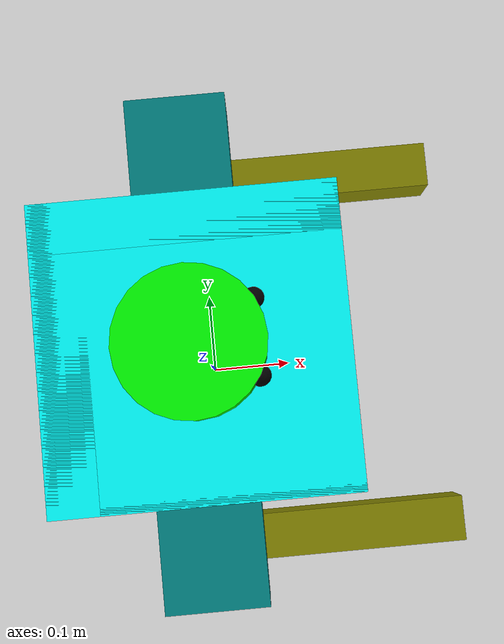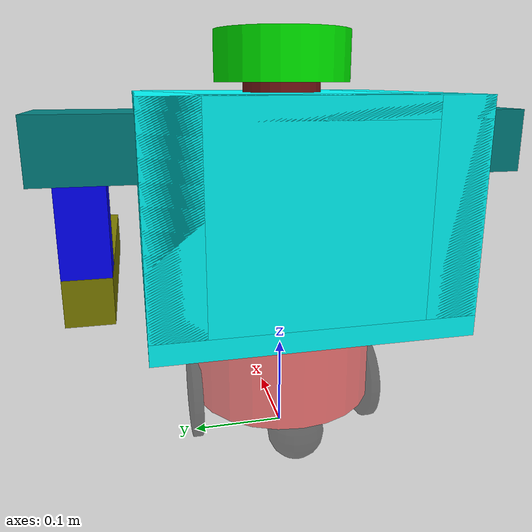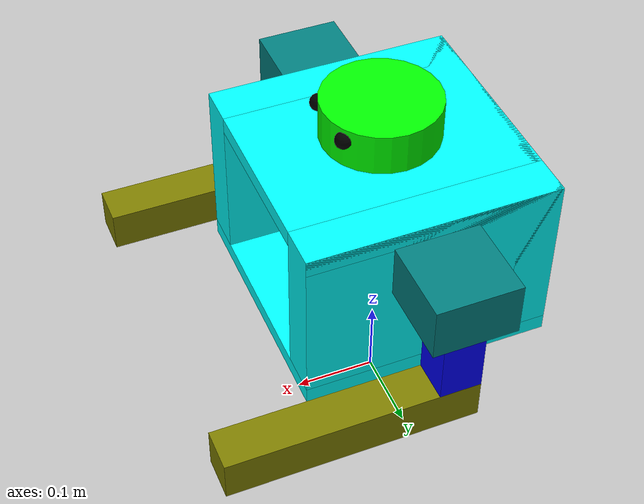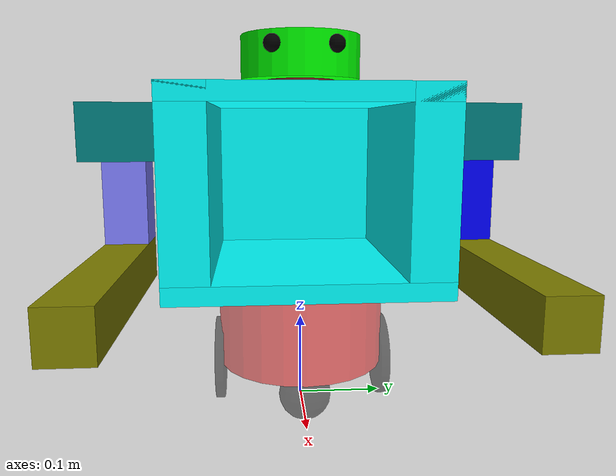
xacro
<?xml version="1.0"?>
<!--
    完整机器人模型 - Gazebo仿真版本
    包含底盘、轮子、身体、腿部、头部等部件
    参数集中定义，便于维护和修改
-->
<robot name="mycar" xmlns:xacro="http://www.ros.org/wiki/xacro">

    <!--                          参数定义区 (集中管理)                            -->

    <!-- 底盘参数 (base_link) -->
    <xacro:property name="base_radius" value="0.1" />        <!-- 底盘半径: 10cm -->
    <xacro:property name="base_height" value="0.1" />       <!-- 底盘高度: 10cm -->
    <xacro:property name="base_z_offset" value="0.1" />     <!-- 底盘离地高度 -->
    <xacro:property name="base_mass" value="2.0" />         <!-- 底盘质量: 2kg -->

    <!-- 驱动轮参数 -->
    <xacro:property name="wheel_radius" value="0.05" />     <!-- 轮子半径: 5cm -->
    <xacro:property name="wheel_length" value="0.01" />     <!-- 轮子宽度: 1cm -->
    <xacro:property name="wheel_y_offset" value="0.1" />    <!-- 轮子Y方向偏移 -->
    <xacro:property name="wheel_z_offset" value="-0.05" />  <!-- 轮子Z方向偏移 -->
    <xacro:property name="wheel_mass" value="0.2" />        <!-- 轮子质量: 0.2kg -->
    <xacro:property name="wheel_separation" value="0.2" />  <!-- 左右轮距 -->

    <!-- 万向轮参数 -->
    <xacro:property name="caster_radius" value="0.03" />    <!-- 万向轮半径: 3cm -->
    <xacro:property name="caster_mass" value="0.05" />      <!-- 万向轮质量: 0.05kg -->
    <xacro:property name="caster_front_x" value="0.07" />   <!-- 前万向轮X偏移 -->
    <xacro:property name="caster_back_x" value="-0.07" />   <!-- 后万向轮X偏移 -->
    <xacro:property name="caster_z_offset" value="-0.07" /> <!-- 万向轮Z偏移 -->

    <!-- 身体平台参数 (box1-box5) -->
    <!-- 底层平台 box1 -->
    <xacro:property name="box1_x" value="0.3" />
    <xacro:property name="box1_y" value="0.3" />
    <xacro:property name="box1_z" value="0.02" />
    <xacro:property name="box1_mass" value="0.5" />
    <xacro:property name="box1_z_offset" value="0.07" />

    <!-- 后面板 box2 -->
    <xacro:property name="box2_x" value="0.05" />
    <xacro:property name="box2_y" value="0.3" />
    <xacro:property name="box2_z" value="0.2" />
    <xacro:property name="box2_mass" value="0.3" />
    <xacro:property name="box2_x_offset" value="-0.125" />
    <xacro:property name="box2_z_offset" value="0.18" />

    <!-- 左侧板 box3 -->
    <xacro:property name="box3_x" value="0.3" />
    <xacro:property name="box3_y" value="0.05" />
    <xacro:property name="box3_z" value="0.2" />
    <xacro:property name="box3_mass" value="0.3" />
    <xacro:property name="box3_y_offset" value="0.125" />
    <xacro:property name="box3_z_offset" value="0.18" />

    <!-- 右侧板 box4 -->
    <xacro:property name="box4_x" value="0.3" />
    <xacro:property name="box4_y" value="0.05" />
    <xacro:property name="box4_z" value="0.2" />
    <xacro:property name="box4_mass" value="0.3" />
    <xacro:property name="box4_y_offset" value="-0.125" />
    <xacro:property name="box4_z_offset" value="0.18" />

    <!-- 顶层平台 box5 -->
    <xacro:property name="box5_x" value="0.3" />
    <xacro:property name="box5_y" value="0.3" />
    <xacro:property name="box5_z" value="0.02" />
    <xacro:property name="box5_mass" value="0.5" />
    <xacro:property name="box5_z_offset" value="0.27" />

    <!-- 腿部参数 -->
    <!-- 左右腿上段 -->
    <xacro:property name="leg_x" value="0.05" />
    <xacro:property name="leg_y" value="0.05" />
    <xacro:property name="leg_z" value="0.16" />
    <xacro:property name="leg_mass" value="0.2" />
    <xacro:property name="leg_y_offset" value="0.08" />

    <!-- 左右腿下段 (leg1) -->
    <xacro:property name="leg1_x" value="0.3" />
    <xacro:property name="leg1_y" value="0.05" />
    <xacro:property name="leg1_z" value="0.05" />
    <xacro:property name="leg1_mass" value="0.3" />
    <xacro:property name="leg1_x_offset" value="0.125" />
    <xacro:property name="leg1_z_offset" value="-0.105" />

    <!-- 头部参数 -->
    <!-- 脖子 -->
    <xacro:property name="neck_radius" value="0.04" />
    <xacro:property name="neck_height" value="0.01" />
    <xacro:property name="neck_mass" value="0.1" />
    <xacro:property name="neck_z_offset" value="0.015" />

    <!-- 头部 -->
    <xacro:property name="head_radius" value="0.07" />
    <xacro:property name="head_height" value="0.05" />
    <xacro:property name="head_mass" value="0.3" />
    <xacro:property name="head_z_offset" value="0.03" />

    <!-- 眼睛 -->
    <xacro:property name="eye_radius" value="0.01" />
    <xacro:property name="eye_mass" value="0.01" />
    <xacro:property name="eye1_y_offset" value="0.035" />
    <xacro:property name="eye2_y_offset" value="-0.035" />
    <xacro:property name="eye_x_offset" value="0.06" />
    <xacro:property name="eye_z_offset" value="0.01" />

    <!-- 关节部件参数 -->
    <xacro:property name="joint_x" value="0.1" />
    <xacro:property name="joint_y" value="0.14" />
    <xacro:property name="joint_z" value="0.065" />
    <xacro:property name="joint_mass" value="0.2" />
    <xacro:property name="joint_y_offset" value="0.055" />
    <xacro:property name="joint_z_offset" value="0.05" />

    <!-- body_link 参数 -->
    <xacro:property name="body_radius" value="0.025" />
    <xacro:property name="body_height" value="0.01" />
    <xacro:property name="body_mass" value="0.1" />
    <xacro:property name="body_z_offset" value="0.055" />

    <!--                            宏定义区                                      -->

    <!-- 惯性矩阵计算宏 -->

    <!-- 圆柱体惯性宏 -->
    <xacro:macro name="cylinder_inertial" params="mass radius length">
        <inertial>
            <mass value="${mass}" />
            <origin xyz="0 0 0" rpy="0 0 0" />
            <inertia ixx="${mass * (3*radius*radius + length*length) / 12}"
                     ixy="0" ixz="0"
                     iyy="${mass * (3*radius*radius + length*length) / 12}"
                     iyz="0"
                     izz="${mass * radius*radius / 2}" />
        </inertial>
    </xacro:macro>

    <!-- 长方体惯性宏 -->
    <xacro:macro name="box_inertial" params="mass x y z">
        <inertial>
            <mass value="${mass}" />
            <origin xyz="0 0 0" rpy="0 0 0" />
            <inertia ixx="${mass * (y*y + z*z) / 12}"
                     ixy="0" ixz="0"
                     iyy="${mass * (x*x + z*z) / 12}"
                     iyz="0"
                     izz="${mass * (x*x + y*y) / 12}" />
        </inertial>
    </xacro:macro>

    <!-- 球体惯性宏 -->
    <xacro:macro name="sphere_inertial" params="mass radius">
        <inertial>
            <mass value="${mass}" />
            <origin xyz="0 0 0" rpy="0 0 0" />
            <inertia ixx="${2 * mass * radius * radius / 5}"
                     ixy="0" ixz="0"
                     iyy="${2 * mass * radius * radius / 5}"
                     iyz="0"
                     izz="${2 * mass * radius * radius / 5}" />
        </inertial>
    </xacro:macro>

    <!-- 材质定义宏 -->
    <xacro:macro name="baselink_material">
        <material name="baselink_color">
            <color rgba="1 0 0 0.5" />
        </material>
    </xacro:macro>

    <xacro:macro name="wheel_material">
        <material name="wheel_color">
            <color rgba="0.0 0.0 0.0 0.5" />
        </material>
    </xacro:macro>

    <!-- 驱动轮宏定义 -->
    <xacro:macro name="drive_wheel" params="name y_offset">
        <link name="${name}">
            <visual>
                <geometry>
                    <cylinder radius="${wheel_radius}" length="${wheel_length}" />
                </geometry>
                <origin xyz="0 0 0" rpy="1.5708 0 0" />
                <xacro:wheel_material />
            </visual>
            <collision>
                <geometry>
                    <cylinder radius="${wheel_radius}" length="${wheel_length}" />
                </geometry>
                <origin xyz="0 0 0" rpy="1.5708 0 0" />
            </collision>
            <xacro:cylinder_inertial mass="${wheel_mass}" radius="${wheel_radius}" length="${wheel_length}" />
        </link>

        <joint name="${name}2_link" type="continuous">
            <parent link="base_link" />
            <child link="${name}" />
            <origin xyz="0 ${y_offset} ${wheel_z_offset}" />
            <axis xyz="0 1 0" />
        </joint>
    </xacro:macro>

    <!-- 万向轮宏定义 -->
    <xacro:macro name="caster_wheel" params="name x_offset">
        <link name="${name}">
            <visual>
                <geometry>
                    <sphere radius="${caster_radius}" />
                </geometry>
                <origin xyz="0 0 0" rpy="0 0 0" />
                <xacro:wheel_material />
            </visual>
            <collision>
                <geometry>
                    <sphere radius="${caster_radius}" />
                </geometry>
                <origin xyz="0 0 0" rpy="0 0 0" />
            </collision>
            <xacro:sphere_inertial mass="${caster_mass}" radius="${caster_radius}" />
        </link>

        <joint name="${name}2_link" type="continuous">
            <parent link="base_link" />
            <child link="${name}" />
            <origin xyz="${x_offset} 0 ${caster_z_offset}" />
            <axis xyz="1 1 1" />
        </joint>
    </xacro:macro>

    <!-- 身体平台宏定义 -->
    <xacro:macro name="box_platform" params="name x y z mass x_offset y_offset z_offset joint_type">
        <link name="${name}">
            <visual>
                <geometry>
                    <box size="${x} ${y} ${z}"/>
                </geometry>
                <origin xyz="0 0 0" rpy="0 0 0" />
                <material name="box_color">
                    <color rgba="0.0 1.0 1.0 1" />
                </material>
            </visual>
            <collision>
                <geometry>
                    <box size="${x} ${y} ${z}"/>
                </geometry>
            </collision>
            <xacro:box_inertial mass="${mass}" x="${x}" y="${y}" z="${z}" />
        </link>

        <joint name="${name}2_link" type="${joint_type}">
            <parent link="base_link" />
            <child link="${name}" />
            <origin xyz="${x_offset} ${y_offset} ${z_offset}" />
            <xacro:if value="${joint_type != 'fixed'}">
                <axis xyz="0 1 0" />
            </xacro:if>
        </joint>
    </xacro:macro>

    <!-- 腿部宏定义 -->
    <xacro:macro name="leg" params="name parent y_offset color_r color_g color_b joint_type">
        <link name="${name}">
            <visual>
                <geometry>
                    <box size="${leg_x} ${leg_y} ${leg_z}" />
                </geometry>
                <origin xyz="0 0 0" rpy="0 0 0" />
                <material name="${name}_color">
                    <color rgba="${color_r} ${color_g} ${color_b} 1" />
                </material>
            </visual>
            <collision>
                <geometry>
                    <box size="${leg_x} ${leg_y} ${leg_z}" />
                </geometry>
            </collision>
            <xacro:box_inertial mass="${leg_mass}" x="${leg_x}" y="${leg_y}" z="${leg_z}" />
        </link>

        <joint name="${name}2_link" type="${joint_type}">
            <parent link="${parent}" />
            <child link="${name}" />
            <origin xyz="0 ${y_offset} 0" />
            <xacro:if value="${joint_type == 'continuous'}">
                <axis xyz="0 1 0" />
            </xacro:if>
        </joint>

        <!-- 腿下段 -->
        <link name="${name}1">
            <visual>
                <geometry>
                    <box size="${leg1_x} ${leg1_y} ${leg1_z}" />
                </geometry>
                <origin xyz="0 0 0" rpy="0 0 0" />
                <material name="${name}1_color">
                    <color rgba="0.5 0.5 0 1" />
                </material>
            </visual>
            <collision>
                <geometry>
                    <box size="${leg1_x} ${leg1_y} ${leg1_z}" />
                </geometry>
            </collision>
            <xacro:box_inertial mass="${leg1_mass}" x="${leg1_x}" y="${leg1_y}" z="${leg1_z}" />
        </link>

        <joint name="${name}12_link" type="${joint_type}">
            <parent link="${name}" />
            <child link="${name}1" />
            <origin xyz="${leg1_x_offset} 0 ${leg1_z_offset}" />
            <xacro:if value="${joint_type == 'continuous'}">
                <axis xyz="0 1 0" />
            </xacro:if>
        </joint>
    </xacro:macro>

    <!-- 眼睛宏定义 -->
    <xacro:macro name="eye" params="name y_offset joint_type">
        <link name="${name}">
            <visual>
                <geometry>
                    <sphere radius="${eye_radius}" />
                </geometry>
                <origin xyz="0 0 0" rpy="0 0 0" />
                <material name="${name}_color">
                    <color rgba="0 0 0 1" />
                </material>
            </visual>
            <collision>
                <geometry>
                    <sphere radius="${eye_radius}" />
                </geometry>
            </collision>
            <xacro:sphere_inertial mass="${eye_mass}" radius="${eye_radius}" />
        </link>

        <joint name="${name}2_link" type="${joint_type}">
            <parent link="head_link" />
            <child link="${name}" />
            <origin xyz="${eye_x_offset} ${y_offset} ${eye_z_offset}" />
            <xacro:if value="${joint_type == 'continuous'}">
                <axis xyz="1 1 1" />
            </xacro:if>
        </joint>
    </xacro:macro>

    <!-- 关节部件宏定义 -->
    <xacro:macro name="arm_joint" params="name parent y_offset joint_type">
        <link name="${name}">
            <visual>
                <geometry>
                    <box size="${joint_x} ${joint_y} ${joint_z}" />
                </geometry>
                <origin xyz="0 0 0" rpy="0 0 0" />
                <material name="${name}_color">
                    <color rgba="0 0.5 0.5 1" />
                </material>
            </visual>
            <collision>
                <geometry>
                    <box size="${joint_x} ${joint_y} ${joint_z}" />
                </geometry>
            </collision>
            <xacro:box_inertial mass="${joint_mass}" x="${joint_x}" y="${joint_y}" z="${joint_z}" />
        </link>

        <joint name="${name}2_link" type="${joint_type}">
            <parent link="${parent}" />
            <child link="${name}" />
            <origin xyz="0 ${y_offset} ${joint_z_offset}" />
            <xacro:if value="${joint_type == 'continuous'}">
                <axis xyz="0 1 0" />
            </xacro:if>
        </joint>
    </xacro:macro>

    <!--                          机器人结构区                                    -->

    <!-- base_footprint -->
    <link name="base_footprint">
        <visual>
            <geometry>
                <sphere radius="0.001" />
            </geometry>
        </visual>
    </link>

    <!-- base_link - 圆柱底盘 -->
    <link name="base_link">
        <visual>
            <geometry>
                <cylinder radius="${base_radius}" length="${base_height}" />
            </geometry>
            <origin xyz="0 0 0" rpy="0 0 0" />
            <xacro:baselink_material />
        </visual>
        <collision>
            <geometry>
                <cylinder radius="${base_radius}" length="${base_height}" />
            </geometry>
            <origin xyz="0 0 0" rpy="0 0 0" />
        </collision>
        <xacro:cylinder_inertial mass="${base_mass}" radius="${base_radius}" length="${base_height}" />
    </link>

    <joint name="link2footprint" type="fixed">
        <parent link="base_footprint" />
        <child link="base_link"/>
        <origin xyz="0 0 ${base_z_offset}" />
    </joint>

    <!-- 左驱动轮 -->
    <xacro:drive_wheel name="left_wheel" y_offset="${wheel_y_offset}" />

    <!-- 右驱动轮 -->
    <xacro:drive_wheel name="right_wheel" y_offset="-${wheel_y_offset}" />

    <!-- 前万向轮 -->
    <xacro:caster_wheel name="front_wheel" x_offset="${caster_front_x}" />

    <!-- 后万向轮 -->
    <xacro:caster_wheel name="back_wheel" x_offset="${caster_back_x}" />

    <!-- body_link -->
    <link name="body_link">
        <visual>
            <geometry>
                <cylinder radius="${body_radius}" length="${body_height}" />
            </geometry>
            <origin xyz="0 0 0" rpy="0 0 0" />
            <material name="bodylink_color">
                <color rgba="0 0.5 0.5 0.5" />
            </material>
        </visual>
        <collision>
            <geometry>
                <cylinder radius="${body_radius}" length="${body_height}" />
            </geometry>
        </collision>
        <xacro:cylinder_inertial mass="${body_mass}" radius="${body_radius}" length="${body_height}" />
    </link>

    <joint name="body2footprint" type="fixed">
        <parent link="base_link" />
        <child link="body_link" />
        <origin xyz="0 0 ${body_z_offset}" />
    </joint>

    <!-- 身体平台 box1-box5 -->
    <xacro:box_platform name="box1" x="${box1_x}" y="${box1_y}" z="${box1_z}"
                        mass="${box1_mass}" x_offset="0" y_offset="0" z_offset="${box1_z_offset}"
                        joint_type="fixed" />

    <xacro:box_platform name="box2" x="${box2_x}" y="${box2_y}" z="${box2_z}"
                        mass="${box2_mass}" x_offset="${box2_x_offset}" y_offset="0" z_offset="${box2_z_offset}"
                        joint_type="fixed" />

    <xacro:box_platform name="box3" x="${box3_x}" y="${box3_y}" z="${box3_z}"
                        mass="${box3_mass}" x_offset="0" y_offset="${box3_y_offset}" z_offset="${box3_z_offset}"
                        joint_type="fixed" />

    <xacro:box_platform name="box4" x="${box4_x}" y="${box4_y}" z="${box4_z}"
                        mass="${box4_mass}" x_offset="0" y_offset="${box4_y_offset}" z_offset="${box4_z_offset}"
                        joint_type="fixed" />

    <xacro:box_platform name="box5" x="${box5_x}" y="${box5_y}" z="${box5_z}"
                        mass="${box5_mass}" x_offset="0" y_offset="0" z_offset="${box5_z_offset}"
                        joint_type="fixed" />

    <!-- 腿部 -->
    <xacro:leg name="left_leg" parent="box3" y_offset="${leg_y_offset}"
               color_r="0.0" color_g="0.0" color_b="1.0" joint_type="fixed" />
    <xacro:leg name="right_leg" parent="box4" y_offset="-${leg_y_offset}"
               color_r="0.5" color_g="0.5" color_b="1.0" joint_type="fixed" />

    <!-- 脖子 -->
    <link name="neck_link">
        <visual>
            <geometry>
                <cylinder radius="${neck_radius}" length="${neck_height}" />
            </geometry>
            <origin xyz="0 0 0" rpy="0 0 0" />
            <material name="neck_color">
                <color rgba="0.5 0.1 0.1 1" />
            </material>
        </visual>
        <collision>
            <geometry>
                <cylinder radius="${neck_radius}" length="${neck_height}" />
            </geometry>
        </collision>
        <xacro:cylinder_inertial mass="${neck_mass}" radius="${neck_radius}" length="${neck_height}" />
    </link>

    <joint name="neck2footprint" type="fixed">
        <parent link="box5" />
        <child link="neck_link" />
        <origin xyz="0 0 ${neck_z_offset}" />
    </joint>

    <!-- 头部 -->
    <link name="head_link">
        <visual>
            <geometry>
                <cylinder radius="${head_radius}" length="${head_height}" />
            </geometry>
            <origin xyz="0 0 0" rpy="0 0 0" />
            <material name="head_color">
                <color rgba="0 1 0 1" />
            </material>
        </visual>
        <collision>
            <geometry>
                <cylinder radius="${head_radius}" length="${head_height}" />
            </geometry>
        </collision>
        <xacro:cylinder_inertial mass="${head_mass}" radius="${head_radius}" length="${head_height}" />
    </link>

    <joint name="head2footprint" type="fixed">
        <parent link="neck_link" />
        <child link="head_link" />
        <origin xyz="0 0 ${head_z_offset}" />
    </joint>

    <!-- 眼睛 -->
    <xacro:eye name="eye1" y_offset="${eye1_y_offset}" joint_type="fixed" />
    <xacro:eye name="eye2" y_offset="${eye2_y_offset}" joint_type="fixed" />

    <!-- 手臂关节 -->
    <xacro:arm_joint name="left_joint" parent="box3" y_offset="${joint_y_offset}" joint_type="fixed" />
    <xacro:arm_joint name="right_joint" parent="box4" y_offset="-${joint_y_offset}" joint_type="fixed" />

    <!--                       Gazebo 仿真配置区                                  -->

    <!-- Gazebo 材质设置 -->

    <!-- 底盘 - 红色 -->
    <gazebo reference="base_link">
        <material>Gazebo/Red</material>
    </gazebo>

    <!-- 驱动轮 - 深灰色，高摩擦 -->
    <gazebo reference="left_wheel">
        <material>Gazebo/Black</material>
        <mu1>1.5</mu1>
        <mu2>1.5</mu2>
        <kp>1000000.0</kp>
        <kd>100.0</kd>
        <minDepth>0.001</minDepth>
        <maxVel>1.0</maxVel>
    </gazebo>

    <gazebo reference="right_wheel">
        <material>Gazebo/Black</material>
        <mu1>1.5</mu1>
        <mu2>1.5</mu2>
        <kp>1000000.0</kp>
        <kd>100.0</kd>
        <minDepth>0.001</minDepth>
        <maxVel>1.0</maxVel>
    </gazebo>

    <!-- 万向轮 - 浅灰色，低摩擦 -->
    <gazebo reference="front_wheel">
        <material>Gazebo/White</material>
        <mu1>0.0</mu1>
        <mu2>0.0</mu2>
    </gazebo>

    <gazebo reference="back_wheel">
        <material>Gazebo/White</material>
        <mu1>0.0</mu1>
        <mu2>0.0</mu2>
    </gazebo>

    <!-- body_link - 青绿色 -->
    <gazebo reference="body_link">
        <material>Gazebo/Teal</material>
    </gazebo>

    <!-- 身体平台 - 橙色 -->
    <gazebo reference="box1">
        <material>Gazebo/Orange</material>
    </gazebo>

    <gazebo reference="box2">
        <material>Gazebo/Orange</material>
    </gazebo>

    <gazebo reference="box3">
        <material>Gazebo/Orange</material>
    </gazebo>

    <gazebo reference="box4">
        <material>Gazebo/Orange</material>
    </gazebo>

    <gazebo reference="box5">
        <material>Gazebo/Orange</material>
    </gazebo>

    <!-- 腿部 - 蓝色 -->
    <gazebo reference="left_leg">
        <material>Gazebo/Blue</material>
    </gazebo>

    <gazebo reference="right_leg">
        <material>Gazebo/Blue</material>
    </gazebo>

    <gazebo reference="left_leg1">
        <material>Gazebo/SkyBlue</material>
    </gazebo>

    <gazebo reference="right_leg1">
        <material>Gazebo/SkyBlue</material>
    </gazebo>

    <!-- 脖子 - 棕色 -->
    <gazebo reference="neck_link">
        <material>Gazebo/Wood</material>
    </gazebo>

    <!-- 头部 - 绿色 -->
    <gazebo reference="head_link">
        <material>Gazebo/Green</material>
    </gazebo>

    <!-- 眼睛 - 黑色 -->
    <gazebo reference="eye1">
        <material>Gazebo/Black</material>
    </gazebo>

    <gazebo reference="eye2">
        <material>Gazebo/Black</material>
    </gazebo>

    <!-- 手臂关节 - 紫色 -->
    <gazebo reference="left_joint">
        <material>Gazebo/Purple</material>
    </gazebo>

    <gazebo reference="right_joint">
        <material>Gazebo/Purple</material>
    </gazebo>

    <!-- Gazebo 差速驱动控制器插件 -->
    <gazebo>
        <plugin name="differential_drive_controller" filename="libgazebo_ros_diff_drive.so">
            <leftJoint>left_wheel2_link</leftJoint>
            <rightJoint>right_wheel2_link</rightJoint>
            <wheelSeparation>${wheel_separation}</wheelSeparation>
            <wheelDiameter>${2 * wheel_radius}</wheelDiameter>
            <maxWheelTorque>10</maxWheelTorque>
            <maxWheelAcceleration>1.0</maxWheelAcceleration>
            <commandTopic>cmd_vel</commandTopic>
            <odometryTopic>odom</odometryTopic>
            <odometryFrame>odom</odometryFrame>
            <robotBaseFrame>base_footprint</robotBaseFrame>
            <publishWheelTF>true</publishWheelTF>
            <publishOdomTF>true</publishOdomTF>
            <updateRate>50.0</updateRate>
        </plugin>
    </gazebo>

    <!-- Gazebo 关节状态发布插件 -->
    <gazebo>
        <plugin name="joint_state_publisher" filename="libgazebo_ros_joint_state_publisher.so">
            <jointName>left_wheel2_link, right_wheel2_link, front_wheel2_link, back_wheel2_link</jointName>
            <updateRate>50.0</updateRate>
        </plugin>
    </gazebo>

</robot>
